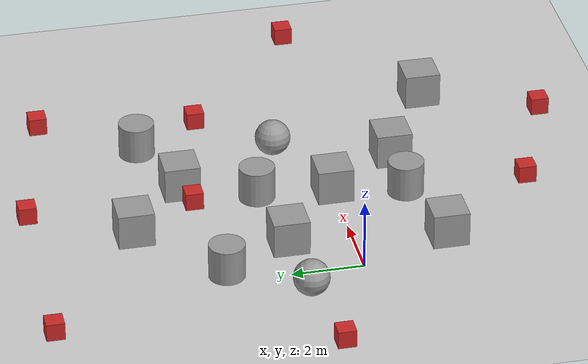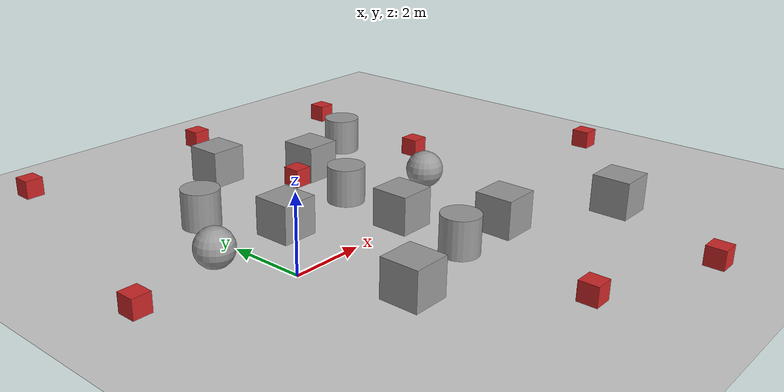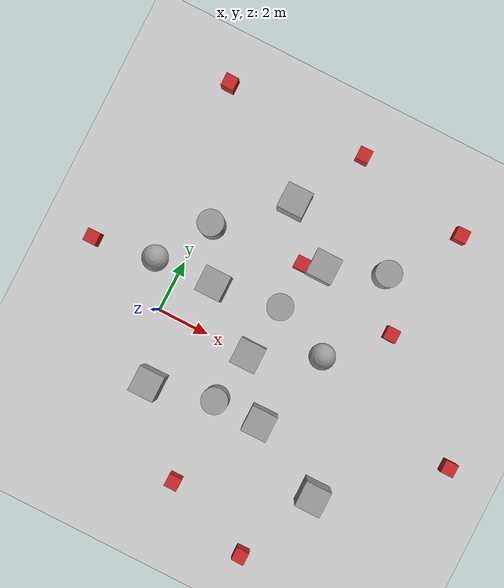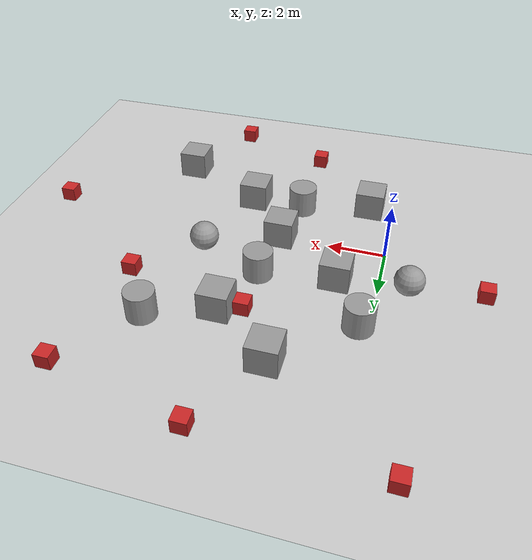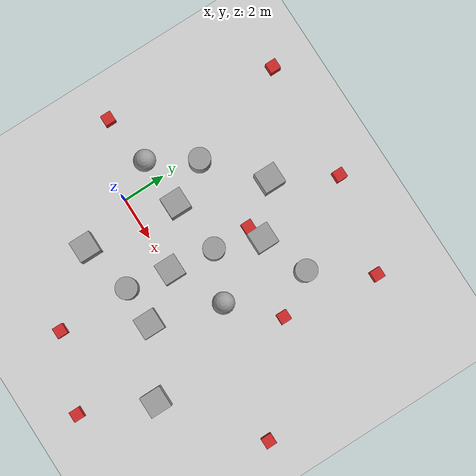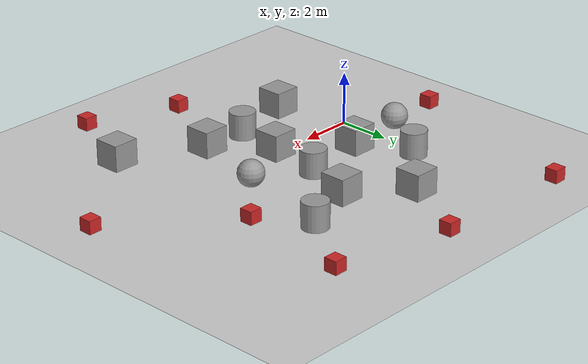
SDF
<sdf version="1.7">
 <world name="default">
  <model name="ground_plane">
   <static>1</static>
   <link name="link">
    <collision name="collision">
     <geometry><plane><normal>0 0 1</normal><size>100 100</size></plane></geometry>
     <surface>
      <contact><collide_bitmask>65535</collide_bitmask></contact>
      <friction><ode><mu>100</mu><mu2>50</mu2></ode></friction>
     </surface>
    </collision>
    <visual name="visual">
     <cast_shadows>0</cast_shadows>
     <geometry><plane><normal>0 0 1</normal><size>100 100</size></plane></geometry>
     <material>
      <script><uri>file://media/materials/scripts/gazebo.material</uri><name>Gazebo/Grey</name></script>
     </material>
    </visual>
   </link>
  </model>
  <light name="sun" type="directional">
   <pose>0 0 10 0 -0 0</pose>
   <diffuse>0.8 0.8 0.8 1</diffuse>
   <specular>0.2 0.2 0.2 1</specular>
   <attenuation>
    <range>1000</range>
    <constant>0.9</constant>
    <linear>0.01</linear>
    <quadratic>0.001</quadratic>
   </attenuation>
   <direction>-0.5 0.1 -0.9</direction>
   <spot><inner_angle>0</inner_angle><outer_angle>0</outer_angle><falloff>0</falloff></spot>
  </light>
  <gravity>0 0 -9.8</gravity>
  <magnetic_field>6e-06 2.3e-05 -4.2e-05</magnetic_field>
  <atmosphere type="adiabatic"/>
  <physics type="ode">
   <max_step_size>0.001</max_step_size>
   <real_time_factor>1</real_time_factor>
   <real_time_update_rate>1000</real_time_update_rate>
  </physics>
  <scene><ambient>0.4 0.4 0.4 1</ambient><background>0.7 0.7 0.7 1</background><shadows>1</shadows></scene>
  <audio><device>default</device></audio>
  <spherical_coordinates>
   <surface_model>EARTH_WGS84</surface_model>
   <latitude_deg>0</latitude_deg>
   <longitude_deg>0</longitude_deg>
   <elevation>0</elevation>
   <heading_deg>0</heading_deg>
  </spherical_coordinates>
  <model name="unit_box">
   <pose>1.40183 1.78039 0.499995 0 1e-05 -1.1e-05</pose>
   <link name="link">
    <inertial>
     <mass>1</mass>
     <inertia>
      <ixx>0.166667</ixx>
      <ixy>0</ixy>
      <ixz>0</ixz>
      <iyy>0.166667</iyy>
      <iyz>0</iyz>
      <izz>0.166667</izz>
     </inertia>
    </inertial>
    <collision name="collision"><geometry><box><size>1 1 1</size></box></geometry></collision>
    <visual name="visual">
     <geometry><box><size>1 1 1</size></box></geometry>
     <material>
      <script><name>Gazebo/Grey</name><uri>file://media/materials/scripts/gazebo.material</uri></script>
     </material>
    </visual>
   </link>
  </model>
  <model name="unit_cylinder">
   <pose>3.37473 -1.96201 0.499998 3e-06 -2e-06 0</pose>
   <link name="link">
    <inertial>
     <mass>1</mass>
     <inertia><ixx>0.145833</ixx><ixy>0</ixy><ixz>0</ixz><iyy>0.145833</iyy><iyz>0</iyz><izz>0.125</izz></inertia>
    </inertial>
    <collision name="collision">
     <geometry><cylinder><radius>0.5</radius><length>1</length></cylinder></geometry>
    </collision>
    <visual name="visual">
     <geometry><cylinder><radius>0.5</radius><length>1</length></cylinder></geometry>
     <material>
      <script><name>Gazebo/Grey</name><uri>file://media/materials/scripts/gazebo.material</uri></script>
     </material>
    </visual>
   </link>
  </model>
  <model name="unit_sphere">
   <pose>6.14321 1.20643 0.5 0 -0 0</pose>
   <link name="link">
    <inertial>
     <mass>1</mass>
     <inertia><ixx>0.1</ixx><ixy>0</ixy><ixz>0</ixz><iyy>0.1</iyy><iyz>0</iyz><izz>0.1</izz></inertia>
    </inertial>
    <collision name="collision"><geometry><sphere><radius>0.5</radius></sphere></geometry></collision>
    <visual name="visual">
     <geometry><sphere><radius>0.5</radius></sphere></geometry>
     <material>
      <script><name>Gazebo/Grey</name><uri>file://media/materials/scripts/gazebo.material</uri></script>
     </material>
    </visual>
   </link>
  </model>
  <model name="unit_cylinder_0">
   <pose>6.88816 4.95161 0.499996 4e-06 2e-06 -0</pose>
   <link name="link">
    <inertial>
     <mass>1</mass>
     <inertia><ixx>0.145833</ixx><ixy>0</ixy><ixz>0</ixz><iyy>0.145833</iyy><iyz>0</iyz><izz>0.125</izz></inertia>
    </inertial>
    <collision name="collision">
     <geometry><cylinder><radius>0.5</radius><length>1</length></cylinder></geometry>
    </collision>
    <visual name="visual">
     <geometry><cylinder><radius>0.5</radius><length>1</length></cylinder></geometry>
     <material>
      <script><name>Gazebo/Grey</name><uri>file://media/materials/scripts/gazebo.material</uri></script>
     </material>
    </visual>
   </link>
  </model>
  <model name="unit_cylinder_1">
   <pose>0.346075 3.68207 0.499995 0 -0 0</pose>
   <link name="link">
    <inertial>
     <mass>1</mass>
     <inertia><ixx>0.145833</ixx><ixy>0</ixy><ixz>0</ixz><iyy>0.145833</iyy><iyz>0</iyz><izz>0.125</izz></inertia>
    </inertial>
    <collision name="collision">
     <geometry><cylinder><radius>0.5</radius><length>1</length></cylinder></geometry>
    </collision>
    <visual name="visual">
     <geometry><cylinder><radius>0.5</radius><length>1</length></cylinder></geometry>
     <material>
      <script><name>Gazebo/Grey</name><uri>file://media/materials/scripts/gazebo.material</uri></script>
     </material>
    </visual>
   </link>
  </model>
  <model name="unit_box_0">
   <pose>2.68132 5.79021 0.499995 0 1e-05 0</pose>
   <link name="link">
    <inertial>
     <mass>1</mass>
     <inertia>
      <ixx>0.166667</ixx>
      <ixy>0</ixy>
      <ixz>0</ixz>
      <iyy>0.166667</iyy>
      <iyz>0</iyz>
      <izz>0.166667</izz>
     </inertia>
    </inertial>
    <collision name="collision"><geometry><box><size>1 1 1</size></box></geometry></collision>
    <visual name="visual">
     <geometry><box><size>1 1 1</size></box></geometry>
     <material>
      <script><name>Gazebo/Grey</name><uri>file://media/materials/scripts/gazebo.material</uri></script>
     </material>
    </visual>
   </link>
  </model>
  <model name="unit_box_1">
   <pose>0.910396 -2.52392 0.499995 0 1e-05 0</pose>
   <link name="link">
    <inertial>
     <mass>1</mass>
     <inertia>
      <ixx>0.166667</ixx>
      <ixy>0</ixy>
      <ixz>0</ixz>
      <iyy>0.166667</iyy>
      <iyz>0</iyz>
      <izz>0.166667</izz>
     </inertia>
    </inertial>
    <collision name="collision"><geometry><box><size>1 1 1</size></box></geometry></collision>
    <visual name="visual">
     <geometry><box><size>1 1 1</size></box></geometry>
     <material>
      <script><name>Gazebo/Grey</name><uri>file://media/materials/scripts/gazebo.material</uri></script>
     </material>
    </visual>
   </link>
  </model>
  <model name="unit_sphere_0">
   <pose>-0.944997 1.65214 0.5 0 -0 0</pose>
   <link name="link">
    <inertial>
     <mass>1</mass>
     <inertia><ixx>0.1</ixx><ixy>0</ixy><ixz>0</ixz><iyy>0.1</iyy><iyz>0</iyz><izz>0.1</izz></inertia>
    </inertial>
    <collision name="collision"><geometry><sphere><radius>0.5</radius></sphere></geometry></collision>
    <visual name="visual">
     <geometry><sphere><radius>0.5</radius></sphere></geometry>
     <material>
      <script><name>Gazebo/Grey</name><uri>file://media/materials/scripts/gazebo.material</uri></script>
     </material>
    </visual>
   </link>
  </model>
  <model name="unit_box_2">
   <pose>3.70189 0.038013 0.499995 0 1e-05 0</pose>
   <link name="link">
    <inertial>
     <mass>1</mass>
     <inertia>
      <ixx>0.166667</ixx>
      <ixy>0</ixy>
      <ixz>0</ixz>
      <iyy>0.166667</iyy>
      <iyz>0</iyz>
      <izz>0.166667</izz>
     </inertia>
    </inertial>
    <collision name="collision"><geometry><box><size>1 1 1</size></box></geometry></collision>
    <visual name="visual">
     <geometry><box><size>1 1 1</size></box></geometry>
     <material>
      <script><name>Gazebo/Grey</name><uri>file://media/materials/scripts/gazebo.material</uri></script>
     </material>
    </visual>
   </link>
  </model>
  <model name="unit_box_3">
   <pose>4.70101 4.14079 0.499995 0 1e-05 0</pose>
   <link name="link">
    <inertial>
     <mass>1</mass>
     <inertia>
      <ixx>0.166667</ixx>
      <ixy>0</ixy>
      <ixz>0</ixz>
      <iyy>0.166667</iyy>
      <iyz>0</iyz>
      <izz>0.166667</izz>
     </inertia>
    </inertial>
    <collision name="collision"><geometry><box><size>1 1 1</size></box></geometry></collision>
    <visual name="visual">
     <geometry><box><size>1 1 1</size></box></geometry>
     <material>
      <script><name>Gazebo/Grey</name><uri>file://media/materials/scripts/gazebo.material</uri></script>
     </material>
    </visual>
   </link>
  </model>
  <model name="unit_cylinder_2">
   <pose>3.95207 2.11724 0.499995 2e-06 1e-06 0</pose>
   <link name="link">
    <inertial>
     <mass>1</mass>
     <inertia><ixx>0.145833</ixx><ixy>0</ixy><ixz>0</ixz><iyy>0.145833</iyy><iyz>0</iyz><izz>0.125</izz></inertia>
    </inertial>
    <collision name="collision">
     <geometry><cylinder><radius>0.5</radius><length>1</length></cylinder></geometry>
    </collision>
    <visual name="visual">
     <geometry><cylinder><radius>0.5</radius><length>1</length></cylinder></geometry>
     <material>
      <script><name>Gazebo/Grey</name><uri>file://media/materials/scripts/gazebo.material</uri></script>
     </material>
    </visual>
   </link>
  </model>
  <model name="unit_box_4">
   <pose>5.18089 -1.96534 0.499995 0 1e-05 0</pose>
   <link name="link">
    <inertial>
     <mass>1</mass>
     <inertia>
      <ixx>0.166667</ixx>
      <ixy>0</ixy>
      <ixz>0</ixz>
      <iyy>0.166667</iyy>
      <iyz>0</iyz>
      <izz>0.166667</izz>
     </inertia>
    </inertial>
    <collision name="collision"><geometry><box><size>1 1 1</size></box></geometry></collision>
    <visual name="visual">
     <geometry><box><size>1 1 1</size></box></geometry>
     <material>
      <script><name>Gazebo/Grey</name><uri>file://media/materials/scripts/gazebo.material</uri></script>
     </material>
    </visual>
   </link>
  </model>
  <model name="unit_box_5">
   <pose>8.14119 -3.50176 0.499995 0 1e-05 0</pose>
   <link name="link">
    <inertial>
     <mass>1</mass>
     <inertia>
      <ixx>0.166667</ixx>
      <ixy>0</ixy>
      <ixz>0</ixz>
      <iyy>0.166667</iyy>
      <iyz>0</iyz>
      <izz>0.166667</izz>
     </inertia>
    </inertial>
    <collision name="collision"><geometry><box><size>1 1 1</size></box></geometry></collision>
    <visual name="visual">
     <geometry><box><size>1 1 1</size></box></geometry>
     <material>
      <script><name>Gazebo/Grey</name><uri>file://media/materials/scripts/gazebo.material</uri></script>
     </material>
    </visual>
   </link>
  </model>
  <model name="red_box">
   <static>1</static>
   <pose>4.16021 8.49675 0.25 0 -0 0</pose>
   <link name="box_link">
    <collision name="box_collision"><geometry><box><size>0.5 0.5 0.5</size></box></geometry></collision>
    <visual name="box_visual">
     <geometry><box><size>0.5 0.5 0.5</size></box></geometry>
     <material>
      <script><uri>file://media/materials/scripts/gazebo.material</uri><name>Gazebo/Red</name></script>
     </material>
    </visual>
    <inertial>
     <mass>1</mass>
     <inertia><ixx>0.0417</ixx><ixy>0</ixy><ixz>0</ixz><iyy>0.0417</iyy><iyz>0</iyz><izz>0.0417</izz></inertia>
    </inertial>
   </link>
  </model>
  <model name="red_box_0">
   <static>1</static>
   <pose>8.68726 7.50025 0.25 0 -0 0</pose>
   <link name="box_link">
    <collision name="box_collision"><geometry><box><size>0.5 0.5 0.5</size></box></geometry></collision>
    <visual name="box_visual">
     <geometry><box><size>0.5 0.5 0.5</size></box></geometry>
     <material>
      <script><uri>file://media/materials/scripts/gazebo.material</uri><name>Gazebo/Red</name></script>
     </material>
    </visual>
    <inertial>
     <mass>1</mass>
     <inertia><ixx>0.0417</ixx><ixy>0</ixy><ixz>0</ixz><iyy>0.0417</iyy><iyz>0</iyz><izz>0.0417</izz></inertia>
    </inertial>
   </link>
  </model>
  <model name="red_box_1">
   <static>1</static>
   <pose>3.35835 -5.38528 0.25 0 -0 0</pose>
   <link name="box_link">
    <collision name="box_collision"><geometry><box><size>0.5 0.5 0.5</size></box></geometry></collision>
    <visual name="box_visual">
     <geometry><box><size>0.5 0.5 0.5</size></box></geometry>
     <material>
      <script><uri>file://media/materials/scripts/gazebo.material</uri><name>Gazebo/Red</name></script>
     </material>
    </visual>
    <inertial>
     <mass>1</mass>
     <inertia><ixx>0.0417</ixx><ixy>0</ixy><ixz>0</ixz><iyy>0.0417</iyy><iyz>0</iyz><izz>0.0417</izz></inertia>
    </inertial>
   </link>
  </model>
  <model name="red_box_2">
   <static>1</static>
   <pose>-1.44779 8.64392 0.25 0 -0 0</pose>
   <link name="box_link">
    <collision name="box_collision"><geometry><box><size>0.5 0.5 0.5</size></box></geometry></collision>
    <visual name="box_visual">
     <geometry><box><size>0.5 0.5 0.5</size></box></geometry>
     <material>
      <script><uri>file://media/materials/scripts/gazebo.material</uri><name>Gazebo/Red</name></script>
     </material>
    </visual>
    <inertial>
     <mass>1</mass>
     <inertia><ixx>0.0417</ixx><ixy>0</ixy><ixz>0</ixz><iyy>0.0417</iyy><iyz>0</iyz><izz>0.0417</izz></inertia>
    </inertial>
   </link>
  </model>
  <model name="red_box_3">
   <static>1</static>
   <pose>-3.37674 1.2898 0.25 0 -0 0</pose>
   <link name="box_link">
    <collision name="box_collision"><geometry><box><size>0.5 0.5 0.5</size></box></geometry></collision>
    <visual name="box_visual">
     <geometry><box><size>0.5 0.5 0.5</size></box></geometry>
     <material>
      <script><uri>file://media/materials/scripts/gazebo.material</uri><name>Gazebo/Red</name></script>
     </material>
    </visual>
    <inertial>
     <mass>1</mass>
     <inertia><ixx>0.0417</ixx><ixy>0</ixy><ixz>0</ixz><iyy>0.0417</iyy><iyz>0</iyz><izz>0.0417</izz></inertia>
    </inertial>
   </link>
  </model>
  <model name="red_box_4">
   <static>1</static>
   <pose>6.78448 -6.67743 0.25 0 -0 0</pose>
   <link name="box_link">
    <collision name="box_collision"><geometry><box><size>0.5 0.5 0.5</size></box></geometry></collision>
    <visual name="box_visual">
     <geometry><box><size>0.5 0.5 0.5</size></box></geometry>
     <material>
      <script><uri>file://media/materials/scripts/gazebo.material</uri><name>Gazebo/Red</name></script>
     </material>
    </visual>
    <inertial>
     <mass>1</mass>
     <inertia><ixx>0.0417</ixx><ixy>0</ixy><ixz>0</ixz><iyy>0.0417</iyy><iyz>0</iyz><izz>0.0417</izz></inertia>
    </inertial>
   </link>
  </model>
  <model name="red_box_5">
   <static>1</static>
   <pose>8.05652 3.08479 0.25 0 -0 0</pose>
   <link name="box_link">
    <collision name="box_collision"><geometry><box><size>0.5 0.5 0.5</size></box></geometry></collision>
    <visual name="box_visual">
     <geometry><box><size>0.5 0.5 0.5</size></box></geometry>
     <material>
      <script><uri>file://media/materials/scripts/gazebo.material</uri><name>Gazebo/Red</name></script>
     </material>
    </visual>
    <inertial>
     <mass>1</mass>
     <inertia><ixx>0.0417</ixx><ixy>0</ixy><ixz>0</ixz><iyy>0.0417</iyy><iyz>0</iyz><izz>0.0417</izz></inertia>
    </inertial>
   </link>
  </model>
  <model name="red_box_6">
   <static>1</static>
   <pose>3.9318 3.90923 0.25 0 -0 0</pose>
   <link name="box_link">
    <collision name="box_collision"><geometry><box><size>0.5 0.5 0.5</size></box></geometry></collision>
    <visual name="box_visual">
     <geometry><box><size>0.5 0.5 0.5</size></box></geometry>
     <material>
      <script><uri>file://media/materials/scripts/gazebo.material</uri><name>Gazebo/Red</name></script>
     </material>
    </visual>
    <inertial>
     <mass>1</mass>
     <inertia><ixx>0.0417</ixx><ixy>0</ixy><ixz>0</ixz><iyy>0.0417</iyy><iyz>0</iyz><izz>0.0417</izz></inertia>
    </inertial>
   </link>
  </model>
  <model name="red_box_7">
   <static>1</static>
   <pose>12.1705 -0.340275 0.25 0 -0 0</pose>
   <link name="box_link">
    <collision name="box_collision"><geometry><box><size>0.5 0.5 0.5</size></box></geometry></collision>
    <visual name="box_visual">
     <geometry><box><size>0.5 0.5 0.5</size></box></geometry>
     <material>
      <script><uri>file://media/materials/scripts/gazebo.material</uri><name>Gazebo/Red</name></script>
     </material>
    </visual>
    <inertial>
     <mass>1</mass>
     <inertia><ixx>0.0417</ixx><ixy>0</ixy><ixz>0</ixz><iyy>0.0417</iyy><iyz>0</iyz><izz>0.0417</izz></inertia>
    </inertial>
   </link>
  </model>
 </world>
</sdf>
